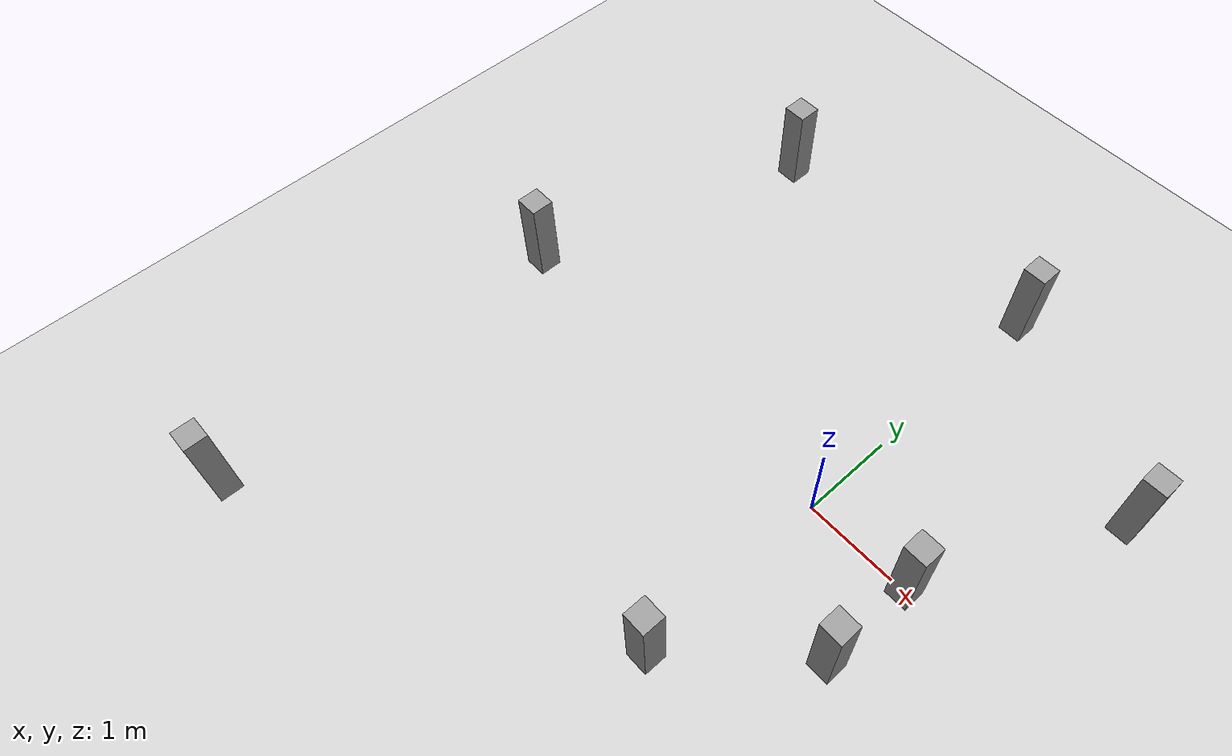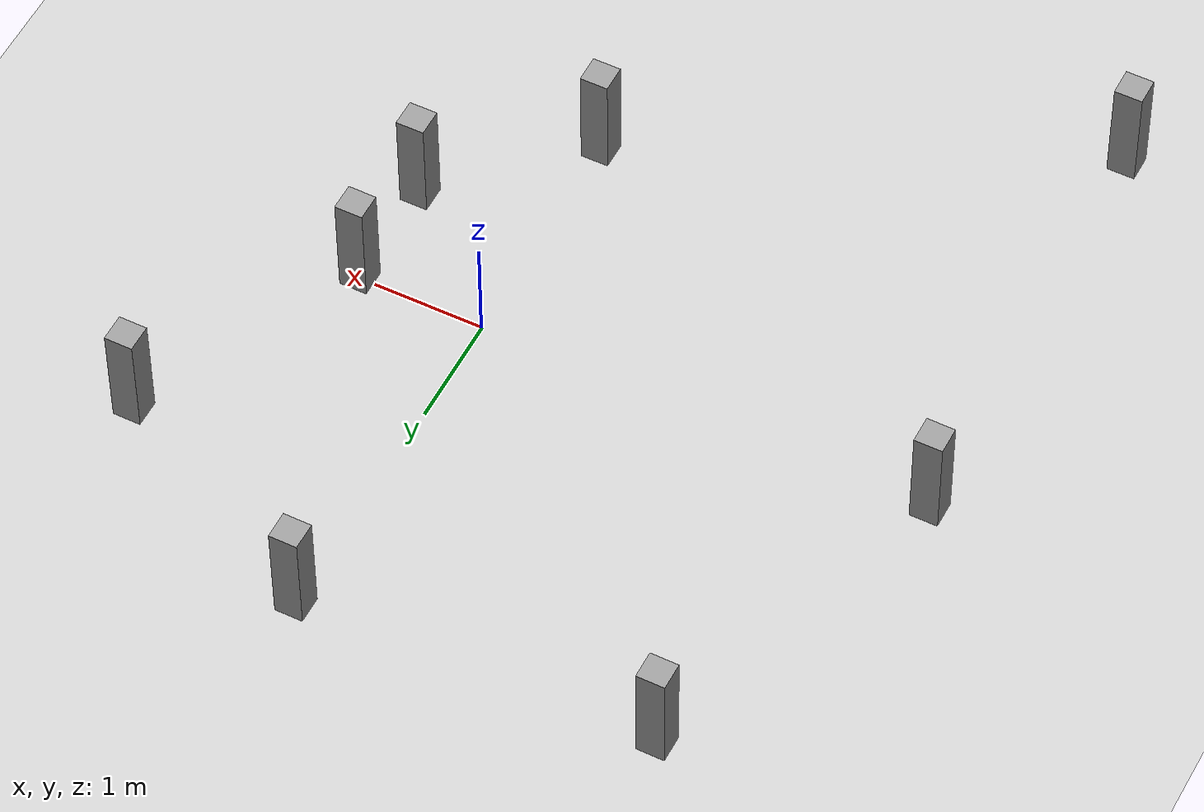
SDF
<sdf version="1.6">
 <world name="default">
  <light name="sun" type="directional">
   <pose>0 0 10 0 -0 0</pose>
   <diffuse>0.8 0.8 0.8 1</diffuse>
   <specular>0.2 0.2 0.2 1</specular>
   <attenuation>
    <range>1000</range>
    <constant>0.9</constant>
    <linear>0.01</linear>
    <quadratic>0.001</quadratic>
   </attenuation>
   <direction>-0.5 0.1 -0.9</direction>
  </light>
  <model name="ground_plane">
   <static>1</static>
   <link name="link">
    <collision name="collision">
     <geometry><plane><normal>0 0 1</normal><size>100 100</size></plane></geometry>
     <surface>
      <contact><collide_bitmask>65535</collide_bitmask></contact>
      <friction><ode><mu>100</mu><mu2>50</mu2></ode></friction>
     </surface>
    </collision>
    <visual name="visual">
     <cast_shadows>0</cast_shadows>
     <geometry><plane><normal>0 0 1</normal><size>100 100</size></plane></geometry>
     <material>
      <script><uri>file://media/materials/scripts/gazebo.material</uri><name>Gazebo/Grey</name></script>
     </material>
    </visual>
   </link>
  </model>
  <gravity>0 0 -9.8</gravity>
  <magnetic_field>6e-06 2.3e-05 -4.2e-05</magnetic_field>
  <atmosphere type="adiabatic"/>
  <physics name="default_physics" default="0" type="ode">
   <max_step_size>0.001</max_step_size>
   <real_time_factor>1</real_time_factor>
   <real_time_update_rate>1000</real_time_update_rate>
  </physics>
  <scene><ambient>0.4 0.4 0.4 1</ambient><background>0.7 0.7 0.7 1</background><shadows>1</shadows></scene>
  <audio><device>default</device></audio>
  <spherical_coordinates>
   <surface_model>EARTH_WGS84</surface_model>
   <latitude_deg>0</latitude_deg>
   <longitude_deg>0</longitude_deg>
   <elevation>0</elevation>
   <heading_deg>0</heading_deg>
  </spherical_coordinates>
  <model name="unit_box">
   <pose>1.14591 -0.001269 0.5 -1e-06 2e-06 9e-06</pose>
   <link name="link">
    <inertial>
     <mass>1</mass>
     <inertia>
      <ixx>0.166667</ixx>
      <ixy>0</ixy>
      <ixz>0</ixz>
      <iyy>0.166667</iyy>
      <iyz>0</iyz>
      <izz>0.166667</izz>
     </inertia>
    </inertial>
    <collision name="collision"><geometry><box><size>0.251674 0.242237 1</size></box></geometry></collision>
    <visual name="visual">
     <geometry><box><size>0.251674 0.242237 1</size></box></geometry>
     <material>
      <script><name>Gazebo/Grey</name><uri>file://media/materials/scripts/gazebo.material</uri></script>
     </material>
    </visual>
   </link>
  </model>
  <model name="unit_box_clone">
   <pose>-0.003347 -2.12411 0.5 -2e-06 0 4.7e-05</pose>
   <link name="link">
    <inertial>
     <mass>1</mass>
     <inertia>
      <ixx>0.166667</ixx>
      <ixy>0</ixy>
      <ixz>0</ixz>
      <iyy>0.166667</iyy>
      <iyz>0</iyz>
      <izz>0.166667</izz>
     </inertia>
    </inertial>
    <collision name="collision"><geometry><box><size>0.251674 0.242237 1</size></box></geometry></collision>
    <visual name="visual">
     <geometry><box><size>0.251674 0.242237 1</size></box></geometry>
     <material>
      <script><name>Gazebo/Grey</name><uri>file://media/materials/scripts/gazebo.material</uri></script>
     </material>
    </visual>
   </link>
  </model>
  <model name="unit_box_clone_0">
   <pose>0.013123 3.1219 0.5 2e-06 2e-06 2.2e-05</pose>
   <link name="link">
    <inertial>
     <mass>1</mass>
     <inertia>
      <ixx>0.166667</ixx>
      <ixy>0</ixy>
      <ixz>0</ixz>
      <iyy>0.166667</iyy>
      <iyz>0</iyz>
      <izz>0.166667</izz>
     </inertia>
    </inertial>
    <collision name="collision"><geometry><box><size>0.251674 0.242237 1</size></box></geometry></collision>
    <visual name="visual">
     <geometry><box><size>0.251674 0.242237 1</size></box></geometry>
     <material>
      <script><name>Gazebo/Grey</name><uri>file://media/materials/scripts/gazebo.material</uri></script>
     </material>
    </visual>
   </link>
  </model>
  <model name="unit_box_clone_1">
   <pose>-4.06595 -0.006938 0.5 -2e-06 2e-06 -1.1e-05</pose>
   <link name="link">
    <inertial>
     <mass>1</mass>
     <inertia>
      <ixx>0.166667</ixx>
      <ixy>0</ixy>
      <ixz>0</ixz>
      <iyy>0.166667</iyy>
      <iyz>0</iyz>
      <izz>0.166667</izz>
     </inertia>
    </inertial>
    <collision name="collision"><geometry><box><size>0.251674 0.242237 1</size></box></geometry></collision>
    <visual name="visual">
     <geometry><box><size>0.251674 0.242237 1</size></box></geometry>
     <material>
      <script><name>Gazebo/Grey</name><uri>file://media/materials/scripts/gazebo.material</uri></script>
     </material>
    </visual>
   </link>
  </model>
  <model name="unit_box_clone_2">
   <pose>2.1339 2.01802 0.5 2e-06 1e-06 7.2e-05</pose>
   <link name="link">
    <inertial>
     <mass>1</mass>
     <inertia>
      <ixx>0.166667</ixx>
      <ixy>0</ixy>
      <ixz>0</ixz>
      <iyy>0.166667</iyy>
      <iyz>0</iyz>
      <izz>0.166667</izz>
     </inertia>
    </inertial>
    <collision name="collision"><geometry><box><size>0.251674 0.242237 1</size></box></geometry></collision>
    <visual name="visual">
     <geometry><box><size>0.251674 0.242237 1</size></box></geometry>
     <material>
      <script><name>Gazebo/Grey</name><uri>file://media/materials/scripts/gazebo.material</uri></script>
     </material>
    </visual>
   </link>
  </model>
  <model name="unit_box_clone_3">
   <pose>1.12689 -1.01422 0.5 1e-06 -3e-06 1.2e-05</pose>
   <link name="link">
    <inertial>
     <mass>1</mass>
     <inertia>
      <ixx>0.166667</ixx>
      <ixy>0</ixy>
      <ixz>0</ixz>
      <iyy>0.166667</iyy>
      <iyz>0</iyz>
      <izz>0.166667</izz>
     </inertia>
    </inertial>
    <collision name="collision"><geometry><box><size>0.251674 0.242237 1</size></box></geometry></collision>
    <visual name="visual">
     <geometry><box><size>0.251674 0.242237 1</size></box></geometry>
     <material>
      <script><name>Gazebo/Grey</name><uri>file://media/materials/scripts/gazebo.material</uri></script>
     </material>
    </visual>
   </link>
  </model>
  <model name="unit_box_clone_4">
   <pose>-3.13751 2.99652 0.5 0 -2e-06 4.2e-05</pose>
   <link name="link">
    <inertial>
     <mass>1</mass>
     <inertia>
      <ixx>0.166667</ixx>
      <ixy>0</ixy>
      <ixz>0</ixz>
      <iyy>0.166667</iyy>
      <iyz>0</iyz>
      <izz>0.166667</izz>
     </inertia>
    </inertial>
    <collision name="collision"><geometry><box><size>0.251674 0.242237 1</size></box></geometry></collision>
    <visual name="visual">
     <geometry><box><size>0.251674 0.242237 1</size></box></geometry>
     <material>
      <script><name>Gazebo/Grey</name><uri>file://media/materials/scripts/gazebo.material</uri></script>
     </material>
    </visual>
   </link>
  </model>
  <model name="unit_box_clone_5">
   <pose>-3.99869 -4.00894 0.5 2e-06 -1e-06 2.1e-05</pose>
   <link name="link">
    <inertial>
     <mass>1</mass>
     <inertia>
      <ixx>0.166667</ixx>
      <ixy>0</ixy>
      <ixz>0</ixz>
      <iyy>0.166667</iyy>
      <iyz>0</iyz>
      <izz>0.166667</izz>
     </inertia>
    </inertial>
    <collision name="collision"><geometry><box><size>0.251674 0.242237 1</size></box></geometry></collision>
    <visual name="visual">
     <geometry><box><size>0.251674 0.242237 1</size></box></geometry>
     <material>
      <script><name>Gazebo/Grey</name><uri>file://media/materials/scripts/gazebo.material</uri></script>
     </material>
    </visual>
   </link>
  </model>
 </world>
</sdf>
